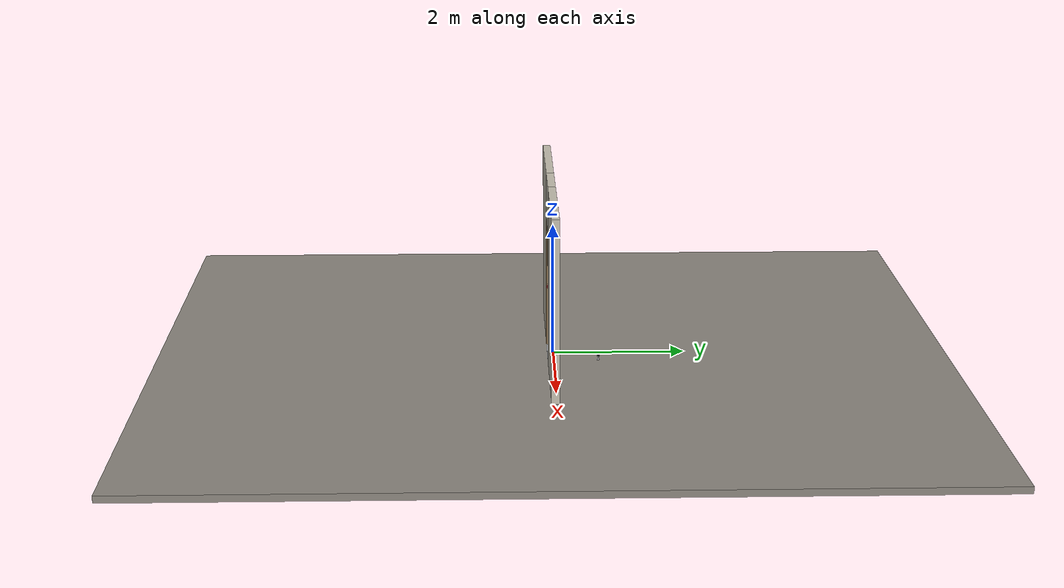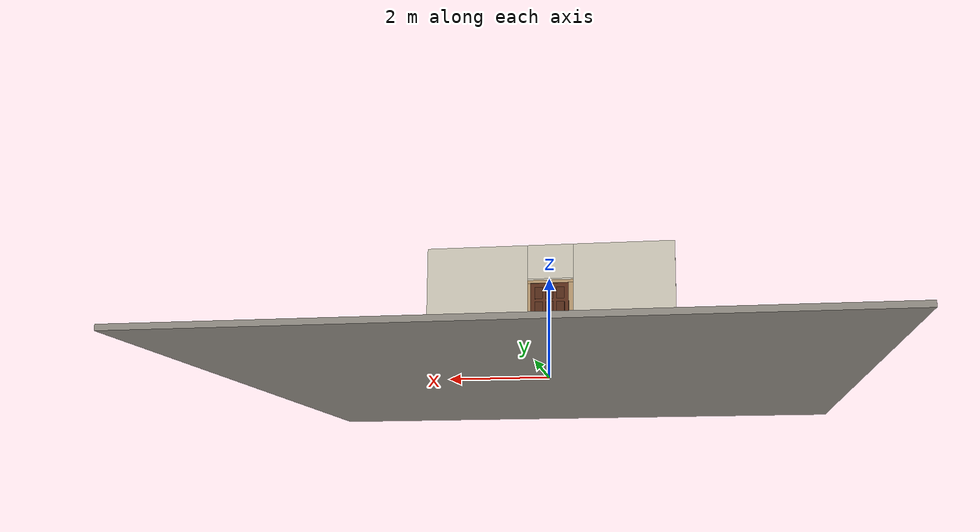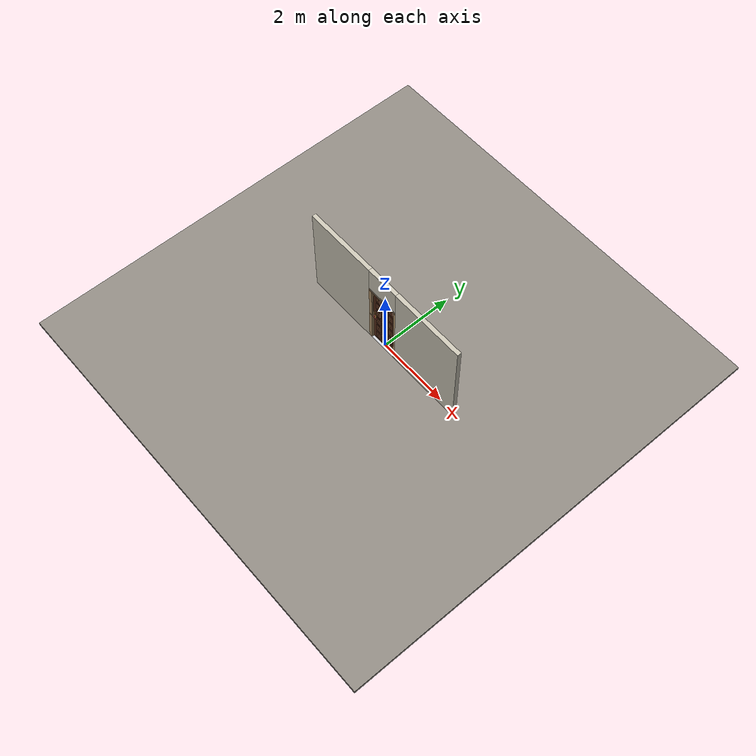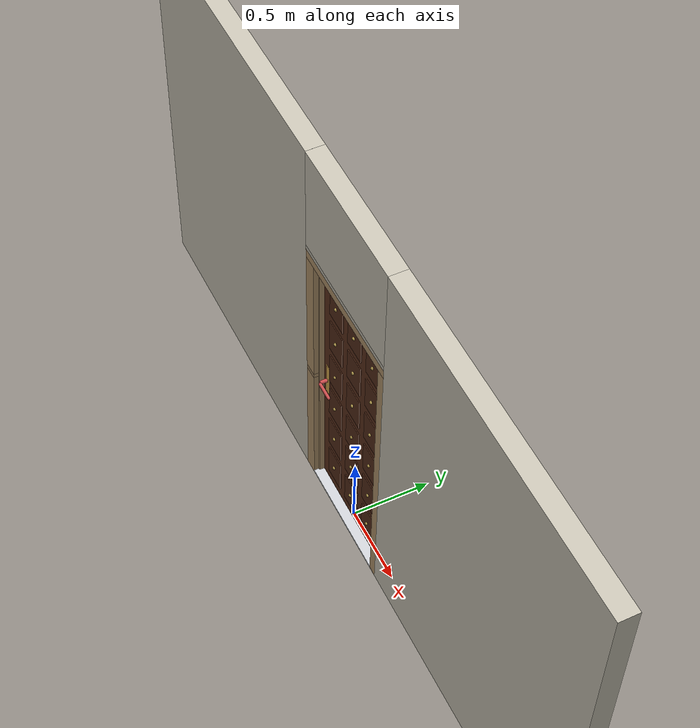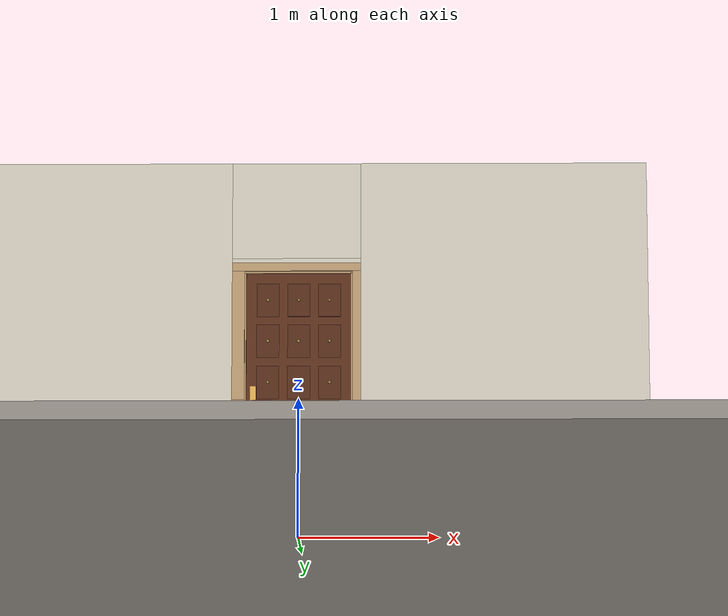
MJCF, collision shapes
<?xml version="1.0" ?>
<mujoco model="db0843_swing_single_full">
  <compiler angle="radian" meshdir="../../hardware" texturedir="../../textures" autolimits="true" inertiafromgeom="false"/>
  <option timestep="0.002" integrator="implicitfast" cone="elliptic" impratio="10" noslip_iterations="3">
    <flag multiccd="enable"/>
  </option>
  <size memory="16M"/>
  <default>
    <geom condim="4" solref="0.005 1" solimp="0.95 0.99 0.001"/>
    <joint solreflimit="0.005 1" solimplimit="0.95 0.99 0.001"/>
    <tendon solreflimit="0.005 1"/>
    <equality solref="0.002 1"/>
  </default>
  <visual>
    <headlight ambient="0.4 0.4 0.4" diffuse="0.7 0.7 0.7" specular="0.2 0.2 0.2"/>
    <quality shadowsize="4096"/>
    <map znear="0.01" zfar="60"/>
  </visual>
  <asset>
    <mesh name="hinge_e22b26c0c1" file="hinge_e22b26c0c1.obj"/>
    <mesh name="hinge_jamb_e1d088f8dc" file="hinge_jamb_e1d088f8dc.obj"/>
    <mesh name="lever_6fbb1e9593" file="lever_6fbb1e9593.obj"/>
    <mesh name="peephole_f829311a59" file="peephole_f829311a59.obj"/>
    <material name="mat_floor" rgba="0.55 0.53 0.5 1" specular="0.2" shininess="0.15" reflectance="0"/>
    <material name="mat_wall" rgba="0.78 0.76 0.7 1" specular="0.2" shininess="0.1" reflectance="0"/>
    <material name="mat_leaf" rgba="0.35 0.18 0.1 1" specular="0.2" shininess="0.4" reflectance="0"/>
    <material name="mat_leaf_panel" rgba="0.322 0.166 0.092 1" specular="0.2" shininess="0.4" reflectance="0"/>
    <material name="mat_button" rgba="0.7 0.6 0.3 1" specular="0.8" shininess="0.7" reflectance="0.4"/>
    <material name="mat_hinge" rgba="0.45 0.3 0.22 1" specular="0.5" shininess="0.1" reflectance="0.2"/>
    <material name="mat_op_brass" rgba="0.85 0.66 0.3 1" specular="0.8" shininess="0.75" reflectance="0.4"/>
    <material name="mat_trim" rgba="0.85 0.66 0.3 1" specular="0.8" shininess="0.75" reflectance="0.4"/>
    <material name="mat_bolt" rgba="0.75 0.76 0.77 1" specular="0.8" shininess="0.65" reflectance="0.4"/>
    <material name="mat_frame" rgba="0.7 0.58 0.42 1" specular="0.2" shininess="0.5" reflectance="0"/>
    <material name="mat_threshold" rgba="0.8 0.81 0.83 1" specular="0.8" shininess="0.6" reflectance="0.4"/>
    <material name="mat_peephole" rgba="0.85 0.66 0.3 1" specular="0.8" shininess="0.75" reflectance="0.4"/>
    <material name="mat_bumper_stop" rgba="0.08 0.08 0.08 1" specular="0.2" shininess="0.1" reflectance="0"/>
    <material name="mat_stop_base" rgba="0.9 0.9 0.92 1" specular="0.8" shininess="0.9" reflectance="0.4"/>
    <texture name="skybox" type="skybox" builtin="gradient" rgb1="0.6 0.7 0.85" rgb2="0.9 0.92 0.95" width="256" height="256"/>
  </asset>
  <worldbody>
    <light name="sun" pos="1.5 -2.5 4" dir="-0.3 0.5 -0.8" directional="true" diffuse="0.8 0.8 0.8" specular="0.3 0.3 0.3" castshadow="true"/>
    <light name="fill" pos="-1.5 2.5 3" dir="0.3 -0.5 -0.7" directional="true" diffuse="0.35 0.35 0.4" castshadow="false"/>
    <camera name="robot_view" pos="0 -2.446938 1.633663" xyaxes="1 0 0 0 0.26963 0.962964" fovy="52"/>
    <camera name="far_view" pos="0 2.389937 1.633663" xyaxes="-1 0 0 0 -0.26963 0.962964" fovy="52"/>
    <camera name="iso" pos="-1.838012 -2.059988 2.020612" xyaxes="0.741536 -0.670913 0 0.242917 0.268487 0.932151" fovy="46"/>
    <camera name="detail_handle" pos="-0.041 -0.877 1.245" xyaxes="0.97561 0.219512 0 -0.070934 0.315262 0.94635" fovy="38"/>
    <geom name="floor" type="box" size="6 6 0.05" pos="0 0 -0.05" material="mat_floor" group="0" contype="1" conaffinity="1" friction="0.8 0.005 0.0001" density="2400"/>
    <geom name="wall_left" type="box" size="1.0125 0.0575 1.35" pos="-1.4875 -0.0285 1.35" material="mat_wall" group="0" contype="1" conaffinity="1" friction="0.6 0.005 0.0001" density="800"/>
    <geom name="wall_right" type="box" size="1.0275 0.0575 1.35" pos="1.4725 -0.0285 1.35" material="mat_wall" group="0" contype="1" conaffinity="1" friction="0.6 0.005 0.0001" density="800"/>
    <geom name="wall_header" type="box" size="0.46 0.0575 0.3485" pos="-0.015 -0.0285 2.3515" material="mat_wall" group="0" contype="1" conaffinity="1" friction="0.6 0.005 0.0001" density="800"/>
    <geom name="hinge_0_jamb" type="mesh" mesh="hinge_jamb_e1d088f8dc" pos="0.382 0.029 0.267" quat="0 0 0 1" material="mat_hinge" group="1" contype="0" conaffinity="0" density="7850"/>
    <geom name="hinge_1_jamb" type="mesh" mesh="hinge_jamb_e1d088f8dc" pos="0.382 0.029 0.963" quat="0 0 0 1" material="mat_hinge" group="1" contype="0" conaffinity="0" density="7850"/>
    <geom name="hinge_2_jamb" type="mesh" mesh="hinge_jamb_e1d088f8dc" pos="0.382 0.029 1.729" quat="0 0 0 1" material="mat_hinge" group="1" contype="0" conaffinity="0" density="7850"/>
    <geom name="jamb_hinge" type="box" size="0.03 0.0575 0.9565" pos="0.415 -0.0285 0.9565" material="mat_frame" group="0" contype="1" conaffinity="1" friction="0.6 0.005 0.0001" density="750"/>
    <geom name="strike_965_wall_n" type="box" size="0.045 0.03975 0.015" pos="-0.43 -0.04625 0.965" material="mat_frame" group="0" contype="1" conaffinity="1" friction="0.6 0.005 0.0001" density="750"/>
    <geom name="strike_965_wall_p" type="box" size="0.045 0.008 0.015" pos="-0.43 0.0145 0.965" material="mat_frame" group="0" contype="1" conaffinity="1" friction="0.6 0.005 0.0001" density="750"/>
    <geom name="strike_965_ramp" type="box" size="0.045 0.016771 0.015" pos="-0.432749 0.017375 0.965" quat="0.973249 0 0 0.229753" material="mat_frame" group="0" contype="1" conaffinity="1" friction="0.12 0.005 0.0001" density="750"/>
    <geom name="strike_965_back" type="box" size="0.036 0.0065 0.015" pos="-0.439 0 0.965" material="mat_frame" group="0" contype="1" conaffinity="1" friction="0.6 0.005 0.0001" density="750"/>
    <geom name="jamb_strike_0" type="box" size="0.045 0.0575 0.475" pos="-0.43 -0.0285 0.475" material="mat_frame" group="0" contype="1" conaffinity="1" friction="0.6 0.005 0.0001" density="750"/>
    <geom name="jamb_strike_1" type="box" size="0.045 0.0575 0.4665" pos="-0.43 -0.0285 1.4465" material="mat_frame" group="0" contype="1" conaffinity="1" friction="0.6 0.005 0.0001" density="750"/>
    <geom name="jamb_head" type="box" size="0.46 0.0575 0.03" pos="-0.015 -0.0285 1.943" material="mat_frame" group="0" contype="1" conaffinity="1" friction="0.6 0.005 0.0001" density="750"/>
    <geom name="head_stud" type="box" size="0.46 0.0575 0.015" pos="-0.015 -0.0285 1.988" material="mat_wall" group="0" contype="1" conaffinity="1" friction="0.6 0.005 0.0001" density="500"/>
    <geom name="stop_hinge" type="box" size="0.0055 0.016 0.9565" pos="0.3795 -0.0385 0.9565" material="mat_frame" group="0" contype="1" conaffinity="1" friction="0.6 0.005 0.0001" density="750"/>
    <geom name="stop_strike" type="box" size="0.0055 0.016 0.9565" pos="-0.3795 -0.0385 0.9565" material="mat_frame" group="0" contype="1" conaffinity="1" friction="0.6 0.005 0.0001" density="750"/>
    <geom name="stop_head" type="box" size="0.385 0.016 0.0055" pos="0 -0.0385 1.9075" material="mat_frame" group="0" contype="1" conaffinity="1" friction="0.6 0.005 0.0001" density="750"/>
    <geom name="threshold" type="box" size="0.445 0.0575 0.0065" pos="0 -0.0285 0.0065" material="mat_threshold" group="0" contype="1" conaffinity="1" friction="0.5 0.005 0.0001" density="2700"/>
    <geom name="door_stop_base" type="cylinder" size="0.022 0.003" pos="0.404 0.6767 0.003" material="mat_stop_base" group="0" contype="1" conaffinity="1" friction="0.6 0.005 0.0001" density="7850"/>
    <geom name="door_stop_post" type="cylinder" size="0.012 0.0255" pos="0.404 0.6767 0.0315" material="mat_stop_base" group="0" contype="1" conaffinity="1" friction="0.6 0.005 0.0001" density="7850"/>
    <geom name="door_stop_bumper" type="cylinder" size="0.022 0.02" pos="0.404 0.6767 0.077" material="mat_bumper_stop" group="0" contype="1" conaffinity="1" friction="0.6 0.005 0.0001" density="1100"/>
    <site name="approach_point" pos="0 -1.5 0" quat="1 0 0 0" size="0.05" rgba="0.2 0.9 0.2 0.5" group="4"/>
    <site name="goal_point" pos="0 1.5 0" quat="1 0 0 0" size="0.05" rgba="0.2 0.9 0.2 0.5" group="4"/>
    <site name="door_plane_center" pos="0 0 0.9565" quat="1 0 0 0" size="0.02" rgba="0.2 0.9 0.2 0.5" group="4"/>
    <body name="leaf" pos="0.385 0 0">
      <inertial pos="-0.379794 -0.000108 0.963573" mass="50.588333" quat="0.499621 0.500631 -0.499369 0.500378" diaginertia="2.529691859 15.058968508 17.570664961"/>
      <joint name="leaf_hinge" type="hinge" axis="0 0 -1" pos="-0.003 0.029 0" limited="true" range="0 1.570796" damping="0.165689" frictionloss="10.484878" armature="0.02"/>
      <geom name="leaf_slab" type="box" size="0.381 0.022 0.946" pos="-0.384 0 0.963" material="mat_leaf" group="0" contype="1" conaffinity="1" friction="0.5 0.005 0.0001" density="1"/>
      <geom name="leaf_panel_0_n" type="box" size="0.080333 0.003 0.119333" pos="-0.163333 -0.025 0.216333" material="mat_leaf_panel" group="1" contype="0" conaffinity="0" density="1"/>
      <geom name="leaf_panel_0_p" type="box" size="0.080333 0.003 0.119333" pos="-0.163333 0.025 0.216333" material="mat_leaf_panel" group="1" contype="0" conaffinity="0" density="1"/>
      <geom name="leaf_panel_1_n" type="box" size="0.080333 0.003 0.119333" pos="-0.384 -0.025 0.216333" material="mat_leaf_panel" group="1" contype="0" conaffinity="0" density="1"/>
      <geom name="leaf_panel_1_p" type="box" size="0.080333 0.003 0.119333" pos="-0.384 0.025 0.216333" material="mat_leaf_panel" group="1" contype="0" conaffinity="0" density="1"/>
      <geom name="leaf_panel_2_n" type="box" size="0.080333 0.003 0.119333" pos="-0.604667 -0.025 0.216333" material="mat_leaf_panel" group="1" contype="0" conaffinity="0" density="1"/>
      <geom name="leaf_panel_2_p" type="box" size="0.080333 0.003 0.119333" pos="-0.604667 0.025 0.216333" material="mat_leaf_panel" group="1" contype="0" conaffinity="0" density="1"/>
      <geom name="leaf_panel_3_n" type="box" size="0.080333 0.003 0.119333" pos="-0.163333 -0.025 0.515" material="mat_leaf_panel" group="1" contype="0" conaffinity="0" density="1"/>
      <geom name="leaf_panel_3_p" type="box" size="0.080333 0.003 0.119333" pos="-0.163333 0.025 0.515" material="mat_leaf_panel" group="1" contype="0" conaffinity="0" density="1"/>
      <geom name="leaf_panel_4_n" type="box" size="0.080333 0.003 0.119333" pos="-0.384 -0.025 0.515" material="mat_leaf_panel" group="1" contype="0" conaffinity="0" density="1"/>
      <geom name="leaf_panel_4_p" type="box" size="0.080333 0.003 0.119333" pos="-0.384 0.025 0.515" material="mat_leaf_panel" group="1" contype="0" conaffinity="0" density="1"/>
      <geom name="leaf_panel_5_n" type="box" size="0.080333 0.003 0.119333" pos="-0.604667 -0.025 0.515" material="mat_leaf_panel" group="1" contype="0" conaffinity="0" density="1"/>
      <geom name="leaf_panel_5_p" type="box" size="0.080333 0.003 0.119333" pos="-0.604667 0.025 0.515" material="mat_leaf_panel" group="1" contype="0" conaffinity="0" density="1"/>
      <geom name="leaf_panel_6_n" type="box" size="0.080333 0.003 0.119333" pos="-0.163333 -0.025 0.813667" material="mat_leaf_panel" group="1" contype="0" conaffinity="0" density="1"/>
      <geom name="leaf_panel_6_p" type="box" size="0.080333 0.003 0.119333" pos="-0.163333 0.025 0.813667" material="mat_leaf_panel" group="1" contype="0" conaffinity="0" density="1"/>
      <geom name="leaf_panel_7_n" type="box" size="0.080333 0.003 0.119333" pos="-0.384 -0.025 0.813667" material="mat_leaf_panel" group="1" contype="0" conaffinity="0" density="1"/>
      <geom name="leaf_panel_7_p" type="box" size="0.080333 0.003 0.119333" pos="-0.384 0.025 0.813667" material="mat_leaf_panel" group="1" contype="0" conaffinity="0" density="1"/>
      <geom name="leaf_panel_8_n" type="box" size="0.080333 0.003 0.119333" pos="-0.604667 -0.025 0.813667" material="mat_leaf_panel" group="1" contype="0" conaffinity="0" density="1"/>
      <geom name="leaf_panel_8_p" type="box" size="0.080333 0.003 0.119333" pos="-0.604667 0.025 0.813667" material="mat_leaf_panel" group="1" contype="0" conaffinity="0" density="1"/>
      <geom name="leaf_panel_9_n" type="box" size="0.080333 0.003 0.119333" pos="-0.163333 -0.025 1.112333" material="mat_leaf_panel" group="1" contype="0" conaffinity="0" density="1"/>
      <geom name="leaf_panel_9_p" type="box" size="0.080333 0.003 0.119333" pos="-0.163333 0.025 1.112333" material="mat_leaf_panel" group="1" contype="0" conaffinity="0" density="1"/>
      <geom name="leaf_panel_10_n" type="box" size="0.080333 0.003 0.119333" pos="-0.384 -0.025 1.112333" material="mat_leaf_panel" group="1" contype="0" conaffinity="0" density="1"/>
      <geom name="leaf_panel_10_p" type="box" size="0.080333 0.003 0.119333" pos="-0.384 0.025 1.112333" material="mat_leaf_panel" group="1" contype="0" conaffinity="0" density="1"/>
      <geom name="leaf_panel_11_n" type="box" size="0.080333 0.003 0.119333" pos="-0.604667 -0.025 1.112333" material="mat_leaf_panel" group="1" contype="0" conaffinity="0" density="1"/>
      <geom name="leaf_panel_11_p" type="box" size="0.080333 0.003 0.119333" pos="-0.604667 0.025 1.112333" material="mat_leaf_panel" group="1" contype="0" conaffinity="0" density="1"/>
      <geom name="leaf_panel_12_n" type="box" size="0.080333 0.003 0.119333" pos="-0.163333 -0.025 1.411" material="mat_leaf_panel" group="1" contype="0" conaffinity="0" density="1"/>
      <geom name="leaf_panel_12_p" type="box" size="0.080333 0.003 0.119333" pos="-0.163333 0.025 1.411" material="mat_leaf_panel" group="1" contype="0" conaffinity="0" density="1"/>
      <geom name="leaf_panel_13_n" type="box" size="0.080333 0.003 0.119333" pos="-0.384 -0.025 1.411" material="mat_leaf_panel" group="1" contype="0" conaffinity="0" density="1"/>
      <geom name="leaf_panel_13_p" type="box" size="0.080333 0.003 0.119333" pos="-0.384 0.025 1.411" material="mat_leaf_panel" group="1" contype="0" conaffinity="0" density="1"/>
      <geom name="leaf_panel_14_n" type="box" size="0.080333 0.003 0.119333" pos="-0.604667 -0.025 1.411" material="mat_leaf_panel" group="1" contype="0" conaffinity="0" density="1"/>
      <geom name="leaf_panel_14_p" type="box" size="0.080333 0.003 0.119333" pos="-0.604667 0.025 1.411" material="mat_leaf_panel" group="1" contype="0" conaffinity="0" density="1"/>
      <geom name="leaf_panel_15_n" type="box" size="0.080333 0.003 0.119333" pos="-0.163333 -0.025 1.709667" material="mat_leaf_panel" group="1" contype="0" conaffinity="0" density="1"/>
      <geom name="leaf_panel_15_p" type="box" size="0.080333 0.003 0.119333" pos="-0.163333 0.025 1.709667" material="mat_leaf_panel" group="1" contype="0" conaffinity="0" density="1"/>
      <geom name="leaf_panel_16_n" type="box" size="0.080333 0.003 0.119333" pos="-0.384 -0.025 1.709667" material="mat_leaf_panel" group="1" contype="0" conaffinity="0" density="1"/>
      <geom name="leaf_panel_16_p" type="box" size="0.080333 0.003 0.119333" pos="-0.384 0.025 1.709667" material="mat_leaf_panel" group="1" contype="0" conaffinity="0" density="1"/>
      <geom name="leaf_panel_17_n" type="box" size="0.080333 0.003 0.119333" pos="-0.604667 -0.025 1.709667" material="mat_leaf_panel" group="1" contype="0" conaffinity="0" density="1"/>
      <geom name="leaf_panel_17_p" type="box" size="0.080333 0.003 0.119333" pos="-0.604667 0.025 1.709667" material="mat_leaf_panel" group="1" contype="0" conaffinity="0" density="1"/>
      <geom name="leaf_tuft_0" type="sphere" size="0.01" pos="-0.163333 -0.03 0.216333" material="mat_button" group="2" contype="0" conaffinity="0" density="7850"/>
      <geom name="leaf_tuft_1" type="sphere" size="0.01" pos="-0.384 -0.03 0.216333" material="mat_button" group="2" contype="0" conaffinity="0" density="7850"/>
      <geom name="leaf_tuft_2" type="sphere" size="0.01" pos="-0.604667 -0.03 0.216333" material="mat_button" group="2" contype="0" conaffinity="0" density="7850"/>
      <geom name="leaf_tuft_3" type="sphere" size="0.01" pos="-0.163333 -0.03 0.515" material="mat_button" group="2" contype="0" conaffinity="0" density="7850"/>
      <geom name="leaf_tuft_4" type="sphere" size="0.01" pos="-0.384 -0.03 0.515" material="mat_button" group="2" contype="0" conaffinity="0" density="7850"/>
      <geom name="leaf_tuft_5" type="sphere" size="0.01" pos="-0.604667 -0.03 0.515" material="mat_button" group="2" contype="0" conaffinity="0" density="7850"/>
      <geom name="leaf_tuft_6" type="sphere" size="0.01" pos="-0.163333 -0.03 0.813667" material="mat_button" group="2" contype="0" conaffinity="0" density="7850"/>
      <geom name="leaf_tuft_7" type="sphere" size="0.01" pos="-0.384 -0.03 0.813667" material="mat_button" group="2" contype="0" conaffinity="0" density="7850"/>
      <geom name="leaf_tuft_8" type="sphere" size="0.01" pos="-0.604667 -0.03 0.813667" material="mat_button" group="2" contype="0" conaffinity="0" density="7850"/>
      <geom name="leaf_tuft_9" type="sphere" size="0.01" pos="-0.163333 -0.03 1.112333" material="mat_button" group="2" contype="0" conaffinity="0" density="7850"/>
      <geom name="leaf_tuft_10" type="sphere" size="0.01" pos="-0.384 -0.03 1.112333" material="mat_button" group="2" contype="0" conaffinity="0" density="7850"/>
      <geom name="leaf_tuft_11" type="sphere" size="0.01" pos="-0.604667 -0.03 1.112333" material="mat_button" group="2" contype="0" conaffinity="0" density="7850"/>
      <geom name="leaf_tuft_12" type="sphere" size="0.01" pos="-0.163333 -0.03 1.411" material="mat_button" group="2" contype="0" conaffinity="0" density="7850"/>
      <geom name="leaf_tuft_13" type="sphere" size="0.01" pos="-0.384 -0.03 1.411" material="mat_button" group="2" contype="0" conaffinity="0" density="7850"/>
      <geom name="leaf_tuft_14" type="sphere" size="0.01" pos="-0.604667 -0.03 1.411" material="mat_button" group="2" contype="0" conaffinity="0" density="7850"/>
      <geom name="leaf_tuft_15" type="sphere" size="0.01" pos="-0.163333 -0.03 1.709667" material="mat_button" group="2" contype="0" conaffinity="0" density="7850"/>
      <geom name="leaf_tuft_16" type="sphere" size="0.01" pos="-0.384 -0.03 1.709667" material="mat_button" group="2" contype="0" conaffinity="0" density="7850"/>
      <geom name="leaf_tuft_17" type="sphere" size="0.01" pos="-0.604667 -0.03 1.709667" material="mat_button" group="2" contype="0" conaffinity="0" density="7850"/>
      <geom name="hinge_0" type="mesh" mesh="hinge_e22b26c0c1" pos="-0.003 0.029 0.267" quat="0 0 0 1" material="mat_hinge" group="1" contype="0" conaffinity="0" density="7850"/>
      <geom name="hinge_1" type="mesh" mesh="hinge_e22b26c0c1" pos="-0.003 0.029 0.963" quat="0 0 0 1" material="mat_hinge" group="1" contype="0" conaffinity="0" density="7850"/>
      <geom name="hinge_2" type="mesh" mesh="hinge_e22b26c0c1" pos="-0.003 0.029 1.729" quat="0 0 0 1" material="mat_hinge" group="1" contype="0" conaffinity="0" density="7850"/>
      <geom name="leaf_handle_escutcheon_n" type="box" size="0.0225 0.0015 0.12" pos="-0.71 -0.0235 0.965" material="mat_op_brass" group="1" contype="0" conaffinity="0" density="3000"/>
      <geom name="leaf_handle_escutcheon_p" type="box" size="0.0225 0.0015 0.12" pos="-0.71 0.0235 0.965" material="mat_op_brass" group="1" contype="0" conaffinity="0" density="3000"/>
      <geom name="leaf_latch_bolt_faceplate" type="box" size="0.0006 0.011 0.025" pos="-0.7644 0 0.965" material="mat_bolt" group="1" contype="0" conaffinity="0" density="8500"/>
      <geom name="peephole" type="mesh" mesh="peephole_f829311a59" pos="-0.384 -0.022 1.517" quat="0 0 -0.707107 0.707107" material="mat_peephole" group="2" contype="0" conaffinity="0" density="8500"/>
      <site name="leaf_edge_mid" pos="-0.765 0 0.946" quat="1 0 0 0" size="0.02" rgba="0.2 0.9 0.2 0.5" group="4"/>
      <body name="leaf_handle" pos="-0.71 0 0.965">
        <inertial pos="0.040022 0 0" mass="0.836698" quat="0.707107 0 0 -0.707107" diaginertia="0.001688823 0.003812607 0.00545529"/>
        <joint name="leaf_handle_hinge" type="hinge" axis="0 1 0" limited="true" range="0 0.7" damping="0.270116" frictionloss="0.064" stiffness="1.4" springref="-0.428571" armature="0.01"/>
        <geom name="leaf_handle_spindle" type="cylinder" size="0.006 0.034" pos="0 0 0" quat="0.707107 -0.707107 0 0" material="mat_op_brass" group="1" contype="0" conaffinity="0" density="7850"/>
        <geom name="leaf_handle_lever_n" type="mesh" mesh="lever_6fbb1e9593" pos="0 -0.022 0" quat="0 0 -0.707107 0.707107" material="mat_op_brass" group="1" contype="0" conaffinity="0" density="3000"/>
        <geom name="leaf_handle_lever_col_n" type="capsule" size="0.01 0.055" pos="0.065 -0.077 0" quat="0.707107 0 0.707107 0" material="mat_op_brass" group="3" contype="1" conaffinity="1" rgba="0.8 0.3 0.3 0.25" friction="0.7 0.01 0.0001" density="3000"/>
        <geom name="leaf_handle_hub_col_n" type="cylinder" size="0.012 0.022" pos="0 -0.052 0" quat="0.707107 -0.707107 0 0" material="mat_op_brass" group="3" contype="1" conaffinity="1" rgba="0.8 0.3 0.3 0.25" friction="0.6 0.005 0.0001" density="3000"/>
        <geom name="leaf_handle_lever_p" type="mesh" mesh="lever_6fbb1e9593" pos="0 0.022 0" quat="0 0 0.707107 0.707107" material="mat_op_brass" group="1" contype="0" conaffinity="0" density="3000"/>
        <geom name="leaf_handle_lever_col_p" type="capsule" size="0.01 0.055" pos="0.065 0.077 0" quat="0.707107 0 0.707107 0" material="mat_op_brass" group="3" contype="1" conaffinity="1" rgba="0.8 0.3 0.3 0.25" friction="0.7 0.01 0.0001" density="3000"/>
        <geom name="leaf_handle_hub_col_p" type="cylinder" size="0.012 0.022" pos="0 0.052 0" quat="0.707107 -0.707107 0 0" material="mat_op_brass" group="3" contype="1" conaffinity="1" rgba="0.8 0.3 0.3 0.25" friction="0.6 0.005 0.0001" density="3000"/>
        <site name="leaf_handle_grip_n" pos="0.104 -0.077 0" quat="1 0 0 0" size="0.012" rgba="0.2 0.9 0.2 0.5" group="4"/>
        <site name="leaf_handle_grip_p" pos="0.104 0.077 0" quat="1 0 0 0" size="0.012" rgba="0.2 0.9 0.2 0.5" group="4"/>
      </body>
      <body name="leaf_latch_bolt" pos="-0.765 0 0.965">
        <inertial pos="0.008 0 0" mass="0.027149" quat="0 0 -0.707107 0.707107" diaginertia="0.000000328 0.000003943 0.000003943"/>
        <joint name="leaf_latch_bolt_slide" type="slide" axis="1 0 0" limited="true" range="0 0.014" damping="2" frictionloss="0.3" stiffness="400" springref="-0.01" armature="0.1"/>
        <geom name="leaf_latch_bolt_capsule" type="capsule" size="0.005 0.017" pos="0.008 0 0" quat="0.707107 0 -0.707107 0" material="mat_bolt" group="0" contype="1" conaffinity="1" friction="0.2 0.005 0.0001" density="8500"/>
      </body>
    </body>
  </worldbody>
  <tendon>
    <fixed name="leaf_latch_bolt_coupling" limited="true" range="0 10">
      <joint joint="leaf_latch_bolt_slide" coef="1"/>
      <joint joint="leaf_handle_hinge" coef="-0.021212"/>
    </fixed>
  </tendon>
  <sensor>
    <jointpos name="leaf_hinge_pos" joint="leaf_hinge"/>
    <jointvel name="leaf_hinge_vel" joint="leaf_hinge"/>
    <jointpos name="leaf_handle_hinge_pos" joint="leaf_handle_hinge"/>
    <jointvel name="leaf_handle_hinge_vel" joint="leaf_handle_hinge"/>
    <jointpos name="leaf_latch_bolt_slide_pos" joint="leaf_latch_bolt_slide"/>
    <jointvel name="leaf_latch_bolt_slide_vel" joint="leaf_latch_bolt_slide"/>
  </sensor>
</mujoco>
